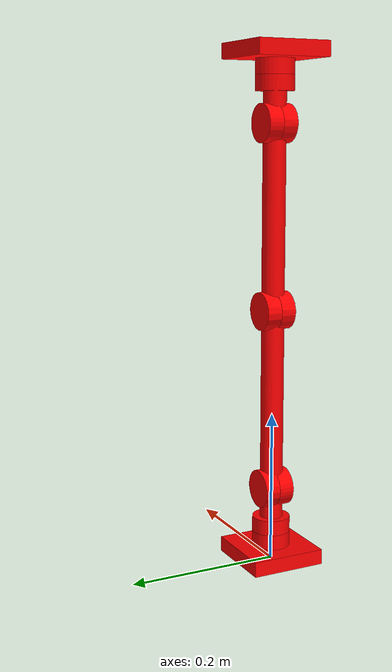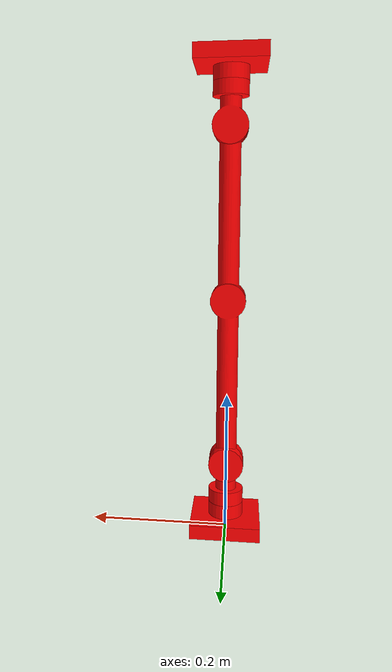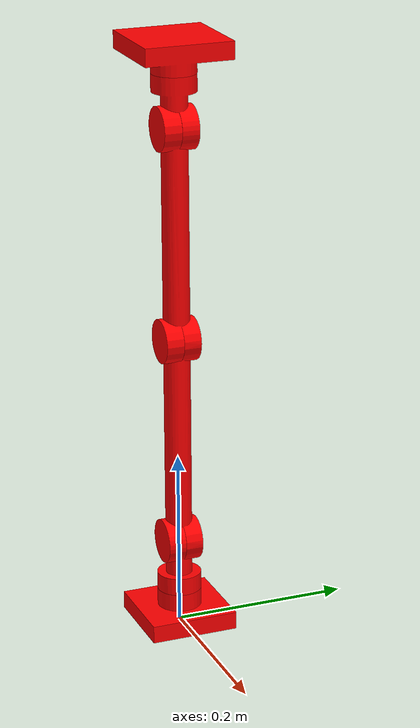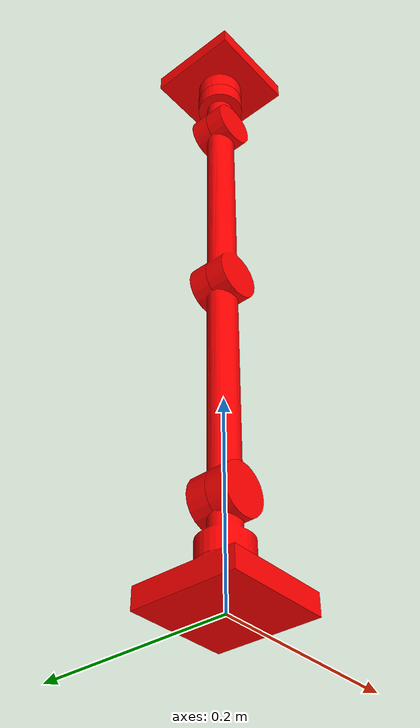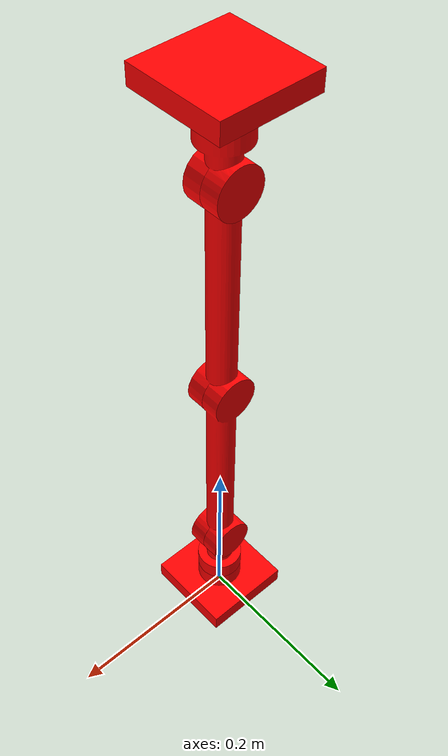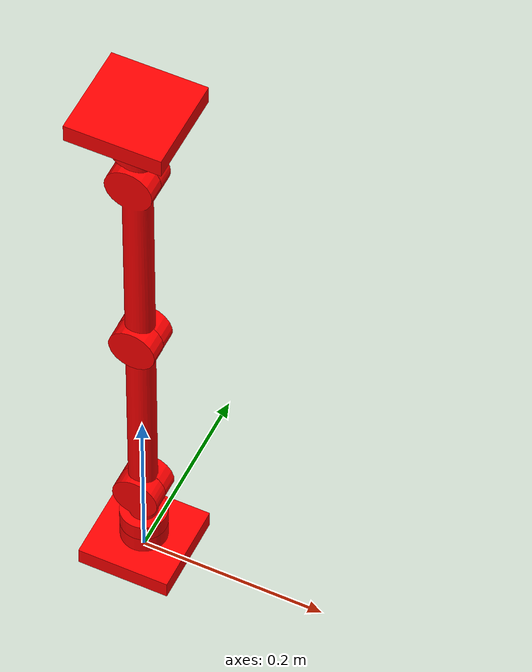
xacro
<?xml version="1.0"?>
<robot xmlns:xacro="http://www.ros.org/wiki/xacro" name="simple_5dof_robot">
    <xacro:arg name="initial_positions_file" default="initial_positions.yaml" />

    <!-- Import simple_5dof_robot urdf file -->
    <xacro:include filename="$(find mdl_description)/urdf/mdl.xacro" />

    <!-- Import control_xacro -->
    <xacro:include filename="simple_5dof_robot.ros2_control.xacro" />

    <xacro:simple_5dof_robot_ros2_control name="FakeSystem" initial_positions_file="$(arg initial_positions_file)"/>

</robot>

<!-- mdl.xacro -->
<robot name="simple_5dof_robot" xmlns:xacro="http://www.ros.org/wiki/xacro">

<xacro:include filename="$(find mdl_description)/urdf/materials.xacro" />
<xacro:include filename="$(find mdl_description)/urdf/mdl_description.xacro" />
<xacro:mdl_description robot_link_color="color_15" robot_EE_1_color="color_0" robot_EE_2_color="color_6" />

</robot>

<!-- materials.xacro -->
<robot name="simple_5dof_robot" xmlns:xacro="http://www.ros.org/wiki/xacro" >

  <material name="White">
    <color rgba="1 1 1 1"/>
  </material>

  <material name="Black">
    <color rgba="0 0 0 1"/>
  </material>

</robot>

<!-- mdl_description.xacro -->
<robot name="simple_5dof_robot"  xmlns:xacro="http://www.ros.org/wiki/xacro" >
  <xacro:macro name="mdl_description" params="robot_link_color robot_EE_1_color robot_EE_2_color">
    <link name="Link_1">
      <inertial>
        <origin
          xyz="4.0039E-18 2.4167E-19 0.013282"
          rpy="0 0 0" />
        <mass
          value="0.24406" />
        <inertia
          ixx="0.00019779"
          ixy="5.4751E-20"
          ixz="6.3796E-21"
          iyy="0.00019779"
          iyz="5.4749E-22"
          izz="0.00035252" />
      </inertial>
      <visual>
        <origin
          xyz="0 0 0"
          rpy="0 0 0" />
        <geometry>
          <mesh filename="package://mdl_description/meshes/Link_1.STL" />
        </geometry>
        <material name="${robot_EE_1_color}">
          <color rgba="1.0 0.0 0.0 2.0"/>
        </material>
      </visual>
      <collision>
        <origin
          xyz="0 0 0"
          rpy="0 0 0" />
        <geometry>
          <mesh
            filename="package://mdl_description/meshes/Link_1.STL" />
        </geometry>
      </collision>
    </link>
    <link
      name="Link_2">
      <inertial>
        <origin
          xyz="2.1865E-09 -0.0043644 0.074128"
          rpy="0 0 0" />
        <mass
          value="0.091778" />
        <inertia
          ixx="6.8897E-05"
          ixy="5.2841E-12"
          ixz="-1.6543E-12"
          iyy="7.1629E-05"
          iyz="1.0363E-05"
          izz="2.3714E-05" />
      </inertial>
      <visual>
        <origin
          xyz="0 0 0"
          rpy="0 0 0" />
        <geometry>
          <mesh
            filename="package://mdl_description/meshes/Link_2.STL" />
        </geometry>
        <material name="${robot_link_color}">
          <color rgba="1.0 0.0 0.0 2.0"/>
        </material>
      </visual>
      <collision>
        <origin
          xyz="0 0 0"
          rpy="0 0 0" />
        <geometry>
          <mesh
            filename="package://mdl_description/meshes/Link_2.STL" />
        </geometry>
      </collision>
    </link>
    <joint
      name="Joint_1"
      type="continuous">
      <origin
        xyz="0 0 0"
        rpy="0 0 0" />
      <parent
        link="Link_1" />
      <child
        link="Link_2" />
      <axis
        xyz="0 0 1" />
    </joint>
    <link
      name="Link_3">
      <inertial>
        <origin
          xyz="0.12 -2.6837E-08 0.0036605"
          rpy="0 0 0" />
        <mass
          value="0.21881" />
        <inertia
          ixx="3.5934E-05"
          ixy="3.0624E-10"
          ixz="-4.9473E-09"
          iyy="0.0016096"
          iyz="3.1981E-10"
          izz="0.0016144" />
      </inertial>
      <visual>
        <origin
          xyz="0 0 0"
          rpy="0 0 0" />
        <geometry>
          <mesh
            filename="package://mdl_description/meshes/Link_3.STL" />
        </geometry>
        <material name="${robot_link_color}">
          <color rgba="1.0 0.0 0.0 2.0"/>
        </material>
      </visual>
      <collision>
        <origin
          xyz="0 0 0"
          rpy="0 0 0" />
        <geometry>
          <mesh
            filename="package://mdl_description/meshes/Link_3.STL" />
        </geometry>
      </collision>
    </link>
    <joint
      name="Joint_2"
      type="continuous">
      <origin
        xyz="0 0 0.1"
        rpy="-1.5708 -1.5708 0" />
      <parent
        link="Link_2" />
      <child
        link="Link_3" />
      <axis
        xyz="0 0 1" />
    </joint>
    <link
      name="Link_4">
      <inertial>
        <origin
          xyz="0.12 2.6837E-08 -0.0036605"
          rpy="0 0 0" />
        <mass
          value="0.21881" />
        <inertia
          ixx="3.5934E-05"
          ixy="-3.0624E-10"
          ixz="4.9473E-09"
          iyy="0.0016096"
          iyz="3.1981E-10"
          izz="0.0016144" />
      </inertial>
      <visual>
        <origin
          xyz="0 0 0"
          rpy="0 0 0" />
        <geometry>
          <mesh
            filename="package://mdl_description/meshes/Link_4.STL" />
        </geometry>
        <material name="${robot_link_color}">
          <color rgba="1.0 0.0 0.0 2.0"/>
        </material>
      </visual>
      <collision>
        <origin
          xyz="0 0 0"
          rpy="0 0 0" />
        <geometry>
          <mesh
            filename="package://mdl_description/meshes/Link_4.STL" />
        </geometry>
      </collision>
    </link>
    <joint
      name="Joint_3"
      type="continuous">
      <origin
        xyz="0.24 0 0"
        rpy="0 0 0" />
      <parent
        link="Link_3" />
      <child
        link="Link_4" />
      <axis
        xyz="0 0 1" />
    </joint>
    <link
      name="Link_5">
      <inertial>
        <origin
          xyz="0.025872 2.1865E-09 0.0043644"
          rpy="0 0 0" />
        <mass
          value="0.091778" />
        <inertia
          ixx="2.3714E-05"
          ixy="1.6543E-12"
          ixz="1.0363E-05"
          iyy="6.8897E-05"
          iyz="-5.2841E-12"
          izz="7.1629E-05" />
      </inertial>
      <visual>
        <origin
          xyz="0 0 0"
          rpy="0 0 0" />
        <geometry>
          <mesh
            filename="package://mdl_description/meshes/Link_5.STL" />
        </geometry>
        <material name="${robot_link_color}">
          <color rgba="1.0 0.0 0.0 2.0"/>
        </material>
      </visual>
      <collision>
        <origin
          xyz="0 0 0"
          rpy="0 0 0" />
        <geometry>
          <mesh
            filename="package://mdl_description/meshes/Link_5.STL" />
        </geometry>
      </collision>
    </link>
    <joint
      name="Joint_4"
      type="continuous">
      <origin
        xyz="0.24 0 0"
        rpy="0 0 0" />
      <parent
        link="Link_4" />
      <child
        link="Link_5" />
      <axis
        xyz="0 0 1" />
    </joint>
    <link
      name="Link_6">
      <inertial>
        <origin
          xyz="-3.7902E-18 -7.3614E-19 -0.013282"
          rpy="0 0 0" />
        <mass
          value="0.24406" />
        <inertia
          ixx="0.00019779"
          ixy="-6.0525E-20"
          ixz="3.6581E-21"
          iyy="0.00019779"
          iyz="5.7166E-22"
          izz="0.00035252" />
      </inertial>
      <visual>
        <origin
          xyz="0 0 0"
          rpy="0 0 0" />
        <geometry>
          <mesh
            filename="package://mdl_description/meshes/Link_6.STL" />
        </geometry>
        <material name="${robot_EE_2_color}">
          <color rgba="1.0 0.0 0.0 2.0"/>
        </material>
      </visual>
      <collision>
        <origin
          xyz="0 0 0"
          rpy="0 0 0" />
        <geometry>
          <mesh
            filename="package://mdl_description/meshes/Link_6.STL" />
        </geometry>
      </collision>
    </link>
    <joint
      name="Joint_5"
      type="continuous">
      <origin
        xyz="0.1 0 0"
        rpy="1.5708 0 1.5708" />
      <parent
        link="Link_5" />
      <child
        link="Link_6" />
      <axis
        xyz="0 0 1" />
    </joint>
  </xacro:macro>
</robot>
